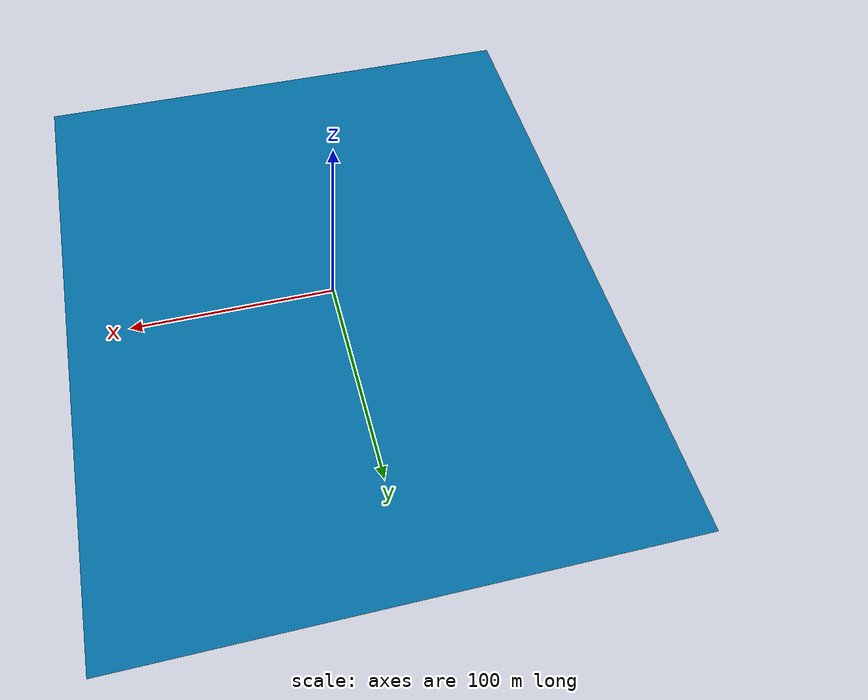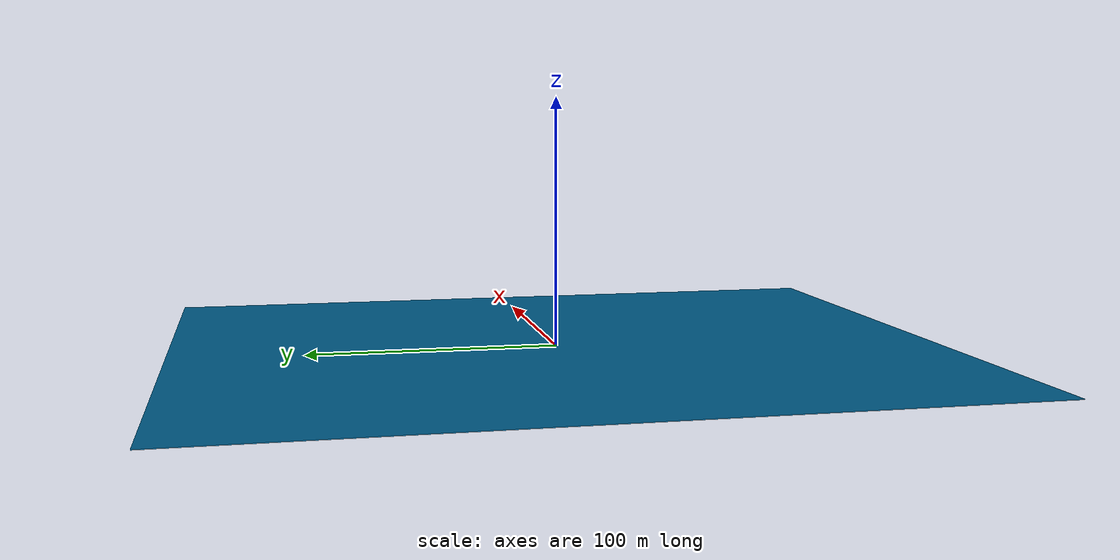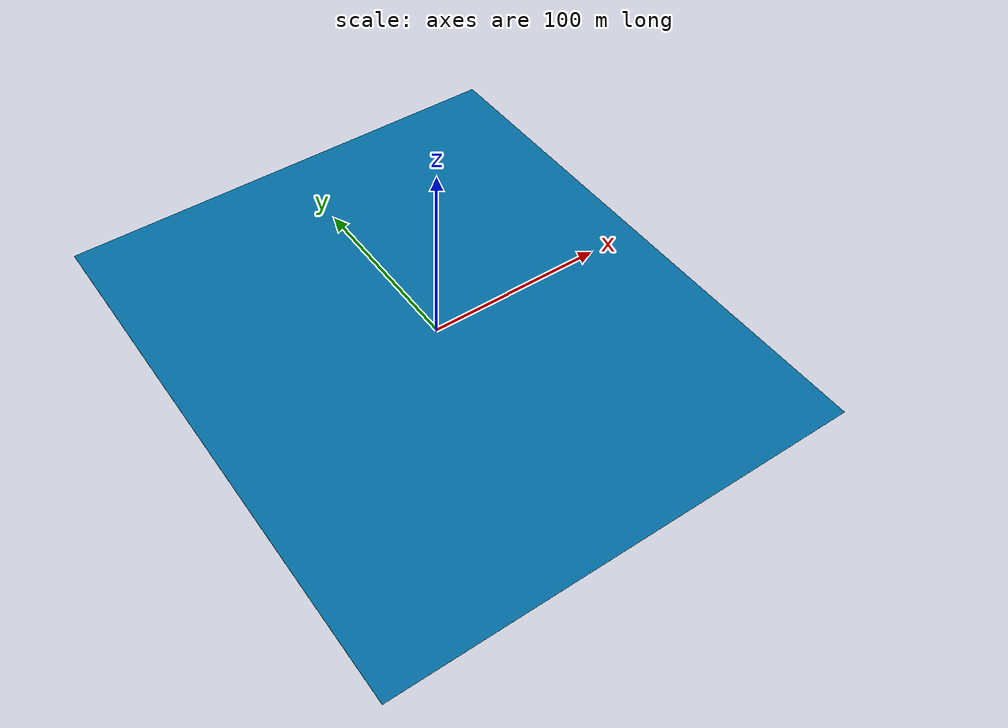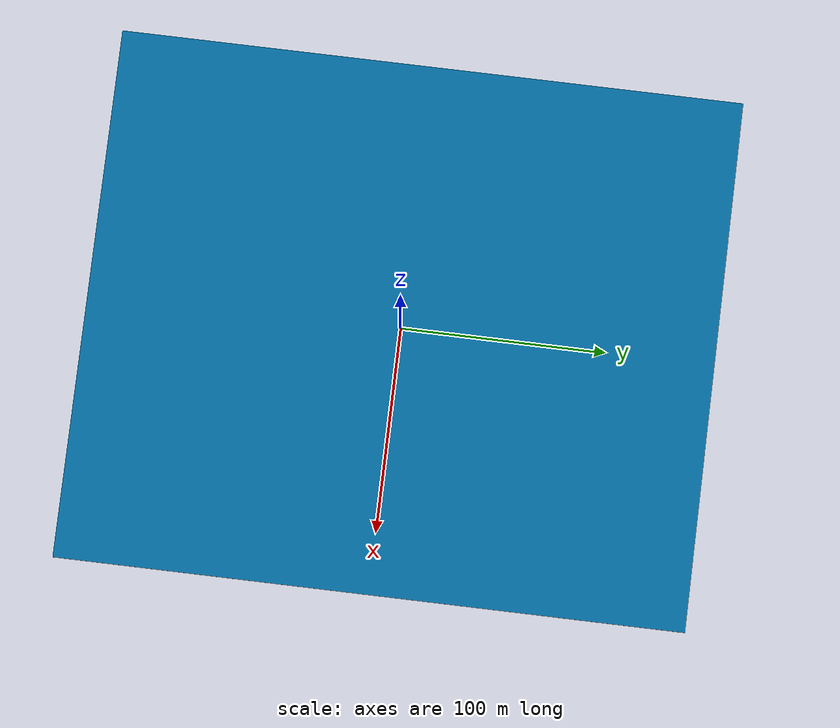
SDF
<?xml version='1.0'?>
<sdf version='1.7'>
  <model name='sea_plane_B1'>
    <link name='link'>
      <self_collide>0</self_collide>
      <enable_wind>0</enable_wind>
      <kinematic>0</kinematic>
      <pose>0 0 0 0 -0 0</pose>
      <gravity>1</gravity>
      <inertial>
        <mass>5.27875e+06</mass>
        <pose>0 0 0 0 -0 0</pose>
        <inertia>
          <ixx>4.66688e+09</ixx>
          <ixy>0</ixy>
          <ixz>0</ixz>
          <iyy>1.84866e+10</iyy>
          <iyz>0</iyz>
          <izz>2.31535e+10</izz>
        </inertia>
      </inertial>
      <visual name='visual'>
        <cast_shadows>0</cast_shadows>
        <geometry>
          <box>
            <size>260 305 0.25</size>
          </box>
        </geometry>
        <material>
          <script>
            <uri>model://sea_plane/materials/scripts</uri>
            <uri>model://sea_plane/materials/textures</uri>
            <name>vrc/sea</name>
          </script>
          <shader type='pixel'>
            <normal_map>__default__</normal_map>
          </shader>
          <ambient>0 0.4 0.6 0</ambient>
          <diffuse>0 0.4 0.6 1</diffuse>
          <specular>0.2 0.2 0.2 1</specular>
          <emissive>0 0 0 1</emissive>
        </material>
        <pose>0 0 0 0 -0 0</pose>
        <transparency>0</transparency>
      </visual>
      <collision name='collision'>
        <laser_retro>0</laser_retro>
        <max_contacts>10</max_contacts>
        <pose>0 0 0 0 -0 0</pose>
        <geometry>
          <box>
            <size>260 305 0.25</size>
          </box>
        </geometry>
        <surface>
          <friction>
            <ode>
              <mu>1</mu>
              <mu2>1</mu2>
              <fdir1>0 0 0</fdir1>
              <slip1>0</slip1>
              <slip2>0</slip2>
            </ode>
            <torsional>
              <coefficient>1</coefficient>
              <patch_radius>0</patch_radius>
              <surface_radius>0</surface_radius>
              <use_patch_radius>1</use_patch_radius>
              <ode>
                <slip>0</slip>
              </ode>
            </torsional>
          </friction>
          <bounce>
            <restitution_coefficient>0</restitution_coefficient>
            <threshold>1e+06</threshold>
          </bounce>
          <contact>
            <collide_without_contact>0</collide_without_contact>
            <collide_without_contact_bitmask>1</collide_without_contact_bitmask>
            <collide_bitmask>1</collide_bitmask>
            <ode>
              <soft_cfm>0</soft_cfm>
              <soft_erp>0.2</soft_erp>
              <kp>1e+13</kp>
              <kd>1</kd>
              <max_vel>0.01</max_vel>
              <min_depth>0</min_depth>
            </ode>
            <bullet>
              <split_impulse>1</split_impulse>
              <split_impulse_penetration_threshold>-0.01</split_impulse_penetration_threshold>
              <soft_cfm>0</soft_cfm>
              <soft_erp>0.2</soft_erp>
              <kp>1e+13</kp>
              <kd>1</kd>
            </bullet>
          </contact>
        </surface>
      </collision>
    </link>
    <static>1</static>
    <allow_auto_disable>1</allow_auto_disable>
  </model>
</sdf>
